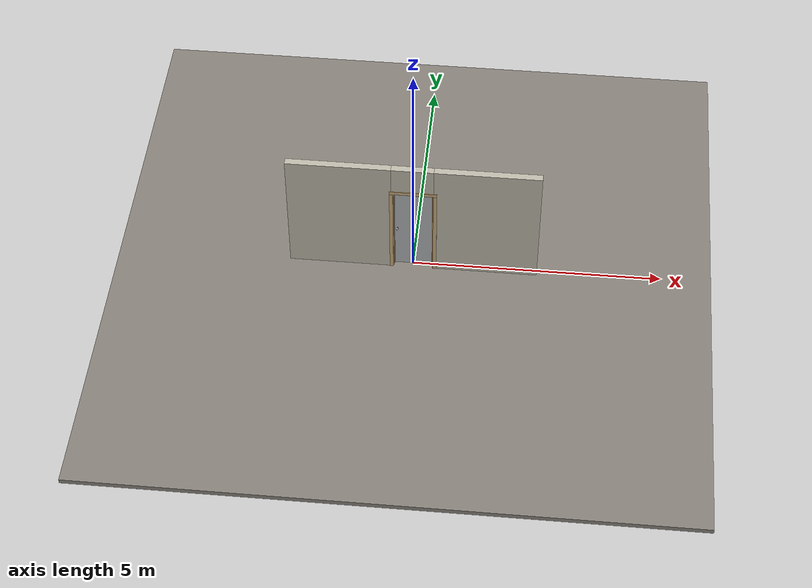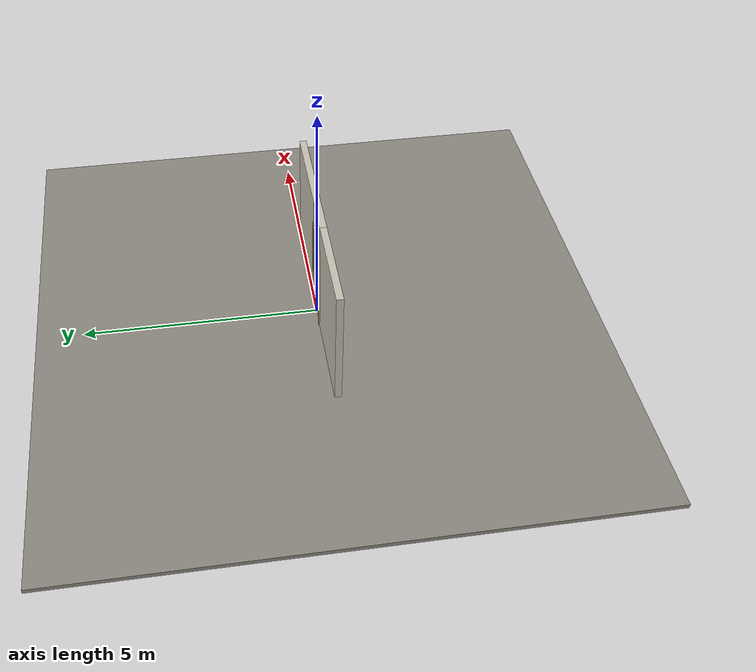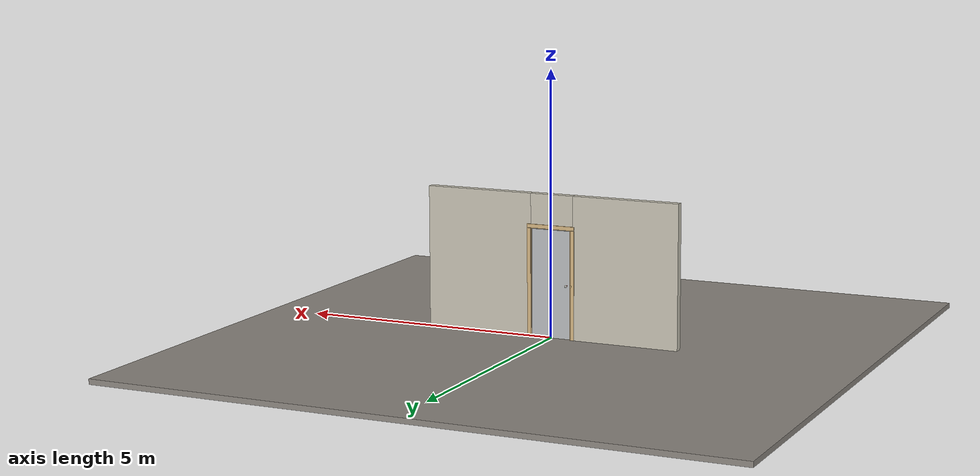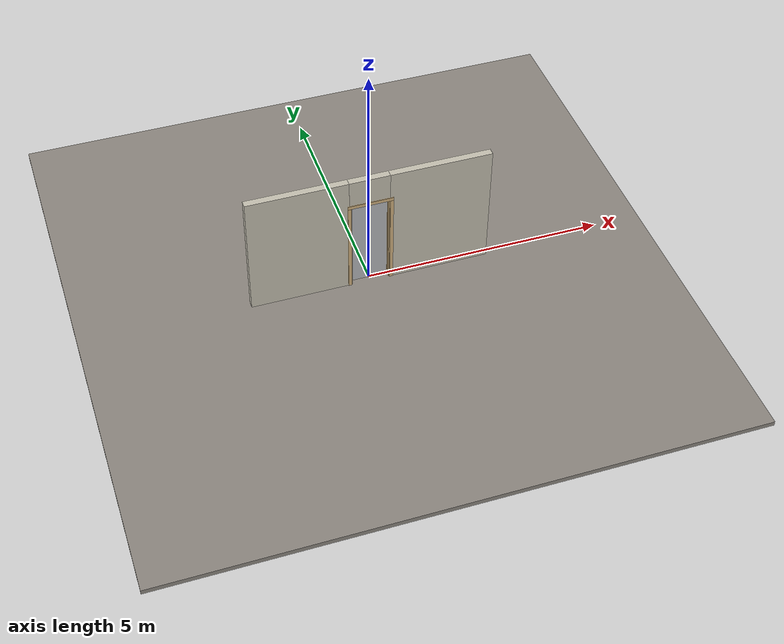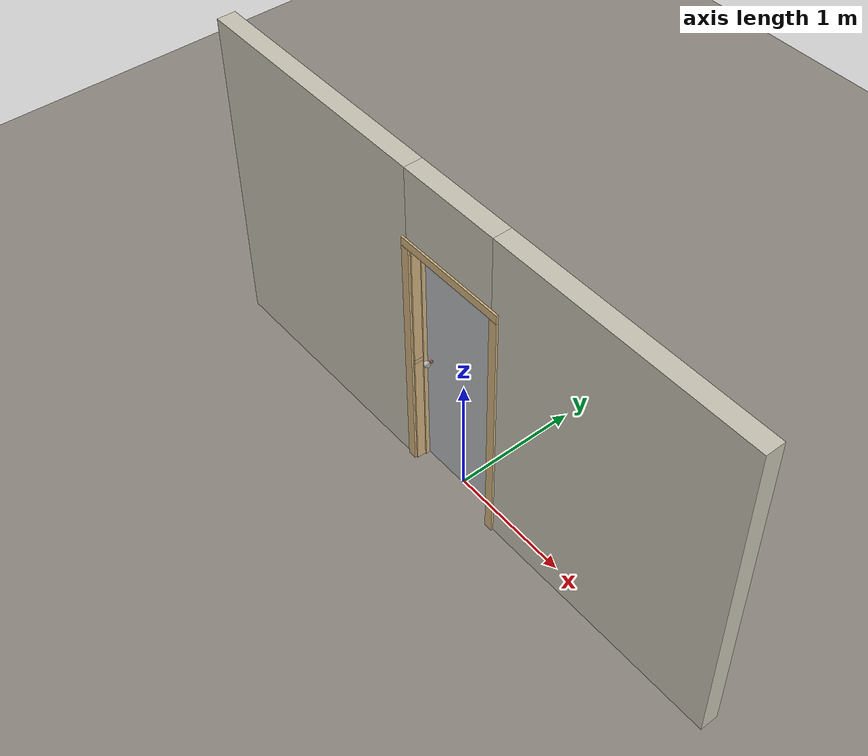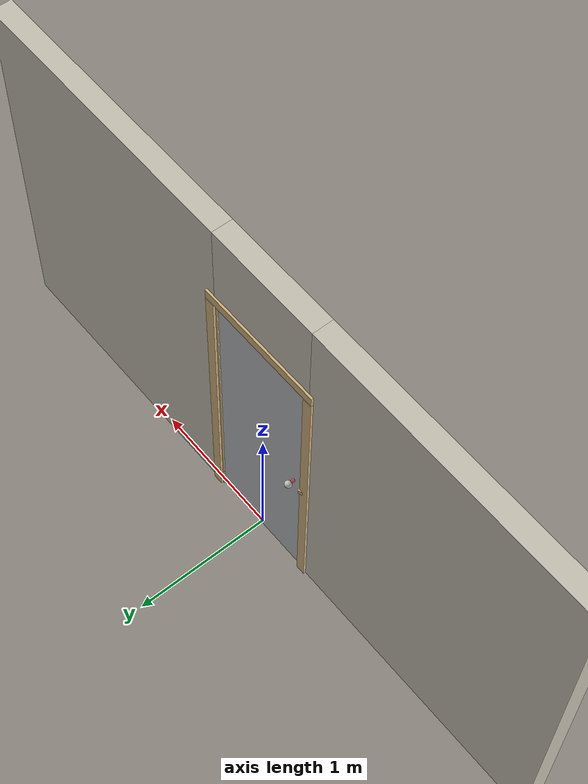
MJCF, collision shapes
<?xml version="1.0" ?>
<mujoco model="db0736_swing_single_full">
  <compiler angle="radian" meshdir="../../hardware" texturedir="../../textures" autolimits="true" inertiafromgeom="false"/>
  <option timestep="0.002" integrator="implicitfast" cone="elliptic" impratio="10" noslip_iterations="3">
    <flag multiccd="enable"/>
  </option>
  <size memory="16M"/>
  <default>
    <geom condim="4" solref="0.005 1" solimp="0.95 0.99 0.001"/>
    <joint solreflimit="0.005 1" solimplimit="0.95 0.99 0.001"/>
    <tendon solreflimit="0.005 1"/>
    <equality solref="0.002 1"/>
  </default>
  <visual>
    <headlight ambient="0.4 0.4 0.4" diffuse="0.7 0.7 0.7" specular="0.2 0.2 0.2"/>
    <quality shadowsize="4096"/>
    <map znear="0.01" zfar="60"/>
  </visual>
  <asset>
    <mesh name="hinge_9ae1f9b7de" file="hinge_9ae1f9b7de.obj"/>
    <mesh name="hinge_jamb_50e97ebc96" file="hinge_jamb_50e97ebc96.obj"/>
    <mesh name="knob_0ccd68d739" file="knob_0ccd68d739.obj"/>
    <material name="mat_floor" rgba="0.55 0.53 0.5 1" specular="0.2" shininess="0.15" reflectance="0"/>
    <material name="mat_wall" rgba="0.78 0.76 0.7 1" specular="0.2" shininess="0.1" reflectance="0"/>
    <material name="mat_leaf" rgba="0.72 0.73 0.74 1" specular="0.2" shininess="0.53" reflectance="0"/>
    <material name="mat_hinge" rgba="0.65 0.66 0.68 1" specular="0.74" shininess="0.5" reflectance="0.36"/>
    <material name="mat_op_hpl" rgba="0.75 0.75 0.72 1" specular="0.2" shininess="0.65" reflectance="0"/>
    <material name="mat_trim" rgba="0.85 0.66 0.3 1" specular="0.8" shininess="0.75" reflectance="0.4"/>
    <material name="mat_bolt" rgba="0.85 0.66 0.3 1" specular="0.8" shininess="0.75" reflectance="0.4"/>
    <material name="mat_frame" rgba="0.82 0.7 0.5 1" specular="0.2" shininess="0.45" reflectance="0"/>
    <material name="mat_seal" rgba="0.1 0.1 0.1 1" specular="0.2" shininess="0.1" reflectance="0"/>
    <texture name="skybox" type="skybox" builtin="gradient" rgb1="0.6 0.7 0.85" rgb2="0.9 0.92 0.95" width="256" height="256"/>
  </asset>
  <worldbody>
    <light name="sun" pos="1.5 -2.5 4" dir="-0.3 0.5 -0.8" directional="true" diffuse="0.8 0.8 0.8" specular="0.3 0.3 0.3" castshadow="true"/>
    <light name="fill" pos="-1.5 2.5 3" dir="0.3 -0.5 -0.7" directional="true" diffuse="0.35 0.35 0.4" castshadow="false"/>
    <camera name="robot_view" pos="0 -2.590187 1.734312" xyaxes="1 0 0 0 0.26963 0.962964" fovy="52"/>
    <camera name="far_view" pos="0 2.494187 1.734312" xyaxes="-1 0 0 0 -0.26963 0.962964" fovy="52"/>
    <camera name="iso" pos="-1.932062 -2.183438 2.141063" xyaxes="0.741536 -0.670913 0 0.242917 0.268487 0.932151" fovy="46"/>
    <camera name="detail_handle" pos="-0.1405 -0.86375 1.296" xyaxes="0.97561 0.219512 0 -0.070934 0.315262 0.94635" fovy="38"/>
    <geom name="floor" type="box" size="6 6 0.05" pos="0 0 -0.05" material="mat_floor" group="0" contype="1" conaffinity="1" friction="0.8 0.005 0.0001" density="2400"/>
    <geom name="wall_left" type="box" size="1.03325 0.0725 1.35" pos="-1.46675 -0.048 1.35" material="mat_wall" group="0" contype="1" conaffinity="1" friction="0.6 0.005 0.0001" density="800"/>
    <geom name="wall_right" type="box" size="1.04825 0.0725 1.35" pos="1.45175 -0.048 1.35" material="mat_wall" group="0" contype="1" conaffinity="1" friction="0.6 0.005 0.0001" density="800"/>
    <geom name="wall_header" type="box" size="0.4185 0.0725 0.303" pos="-0.015 -0.048 2.397" material="mat_wall" group="0" contype="1" conaffinity="1" friction="0.6 0.005 0.0001" density="800"/>
    <geom name="hinge_0_jamb" type="mesh" mesh="hinge_jamb_50e97ebc96" pos="0.3815 0.0245 0.259" quat="0 0 0 1" material="mat_hinge" group="1" contype="0" conaffinity="0" density="7850"/>
    <geom name="hinge_1_jamb" type="mesh" mesh="hinge_jamb_50e97ebc96" pos="0.3815 0.0245 1.025" quat="0 0 0 1" material="mat_hinge" group="1" contype="0" conaffinity="0" density="7850"/>
    <geom name="hinge_2_jamb" type="mesh" mesh="hinge_jamb_50e97ebc96" pos="0.3815 0.0245 1.861" quat="0 0 0 1" material="mat_hinge" group="1" contype="0" conaffinity="0" density="7850"/>
    <geom name="jamb_hinge" type="box" size="0.0095 0.0725 1.0225" pos="0.394 -0.048 1.0225" material="mat_frame" group="0" contype="1" conaffinity="1" friction="0.6 0.005 0.0001" density="400"/>
    <geom name="strike_1016_wall_n" type="box" size="0.0245 0.056325 0.0167" pos="-0.409 -0.064175 1.016" material="mat_frame" group="0" contype="1" conaffinity="1" friction="0.6 0.005 0.0001" density="400"/>
    <geom name="strike_1016_wall_p" type="box" size="0.0245 0.008 0.0167" pos="-0.409 0.01585 1.016" material="mat_frame" group="0" contype="1" conaffinity="1" friction="0.6 0.005 0.0001" density="400"/>
    <geom name="strike_1016_ramp" type="box" size="0.0245 0.01649 0.0167" pos="-0.413636 0.028673 1.016" quat="0.977148 0 0 0.212558" material="mat_frame" group="0" contype="1" conaffinity="1" friction="0.12 0.005 0.0001" density="400"/>
    <geom name="strike_1016_back" type="box" size="0.01615 0.00785 0.0167" pos="-0.41735 0 1.016" material="mat_frame" group="0" contype="1" conaffinity="1" friction="0.6 0.005 0.0001" density="400"/>
    <geom name="jamb_strike_0" type="box" size="0.0245 0.0725 0.49965" pos="-0.409 -0.048 0.49965" material="mat_frame" group="0" contype="1" conaffinity="1" friction="0.6 0.005 0.0001" density="400"/>
    <geom name="jamb_strike_1" type="box" size="0.0245 0.0725 0.50615" pos="-0.409 -0.048 1.53885" material="mat_frame" group="0" contype="1" conaffinity="1" friction="0.6 0.005 0.0001" density="400"/>
    <geom name="jamb_head" type="box" size="0.4185 0.0725 0.0095" pos="-0.015 -0.048 2.0545" material="mat_frame" group="0" contype="1" conaffinity="1" friction="0.6 0.005 0.0001" density="400"/>
    <geom name="head_stud" type="box" size="0.4185 0.0725 0.015" pos="-0.015 -0.048 2.079" material="mat_wall" group="0" contype="1" conaffinity="1" friction="0.6 0.005 0.0001" density="500"/>
    <geom name="stop_hinge" type="box" size="0.0055 0.016 1.0225" pos="0.379 -0.034 1.0225" material="mat_frame" group="0" contype="1" conaffinity="1" friction="0.6 0.005 0.0001" density="400"/>
    <geom name="stop_strike" type="box" size="0.0055 0.016 1.0225" pos="-0.379 -0.034 1.0225" material="mat_frame" group="0" contype="1" conaffinity="1" friction="0.6 0.005 0.0001" density="400"/>
    <geom name="stop_head" type="box" size="0.3845 0.016 0.0055" pos="0 -0.034 2.0395" material="mat_frame" group="0" contype="1" conaffinity="1" friction="0.6 0.005 0.0001" density="400"/>
    <geom name="seal_hinge" type="box" size="0.004 0.002 1.0225" pos="0.3815 -0.0195 1.0225" material="mat_seal" group="1" contype="0" conaffinity="0" density="1100"/>
    <geom name="seal_strike" type="box" size="0.004 0.002 1.0225" pos="-0.3815 -0.0195 1.0225" material="mat_seal" group="1" contype="0" conaffinity="0" density="1100"/>
    <geom name="seal_head" type="box" size="0.3645 0.002 0.008" pos="0 -0.0195 2.033" material="mat_seal" group="1" contype="0" conaffinity="0" density="1100"/>
    <geom name="casing_l_n" type="box" size="0.035 0.008 1.032" pos="-0.4335 -0.1285 1.0225" material="mat_frame" group="2" contype="0" conaffinity="0" density="400"/>
    <geom name="casing_r_n" type="box" size="0.035 0.008 1.032" pos="0.4335 -0.1285 1.0225" material="mat_frame" group="2" contype="0" conaffinity="0" density="400"/>
    <geom name="casing_h_n" type="box" size="0.4685 0.008 0.035" pos="0 -0.1285 2.094" material="mat_frame" group="2" contype="0" conaffinity="0" density="400"/>
    <geom name="casing_l_p" type="box" size="0.035 0.008 1.032" pos="-0.4335 0.0325 1.0225" material="mat_frame" group="2" contype="0" conaffinity="0" density="400"/>
    <geom name="casing_r_p" type="box" size="0.035 0.008 1.032" pos="0.4335 0.0325 1.0225" material="mat_frame" group="2" contype="0" conaffinity="0" density="400"/>
    <geom name="casing_h_p" type="box" size="0.4685 0.008 0.035" pos="0 0.0325 2.094" material="mat_frame" group="2" contype="0" conaffinity="0" density="400"/>
    <site name="approach_point" pos="0 -1.5 0" quat="1 0 0 0" size="0.05" rgba="0.2 0.9 0.2 0.5" group="4"/>
    <site name="goal_point" pos="0 1.5 0" quat="1 0 0 0" size="0.05" rgba="0.2 0.9 0.2 0.5" group="4"/>
    <site name="door_plane_center" pos="0 0 1.0225" quat="1 0 0 0" size="0.02" rgba="0.2 0.9 0.2 0.5" group="4"/>
    <body name="leaf" pos="0.3845 0 0">
      <inertial pos="-0.374918 0.000512 1.02557" mass="12.937293" quat="0.499254 0.501116 -0.498866 0.500761" diaginertia="0.658819345 4.475909482 5.131877604"/>
      <joint name="leaf_hinge" type="hinge" axis="0 0 -1" pos="-0.003 0.0245 0" limited="true" range="0 1.919862" solreflimit="0.02 1" damping="2.123726" frictionloss="0.469407" stiffness="6.6" springref="-0.409091" armature="0.02"/>
      <geom name="leaf_slab" type="box" size="0.381 0.0175 1.016" pos="-0.384 0 1.025" material="mat_leaf" group="0" contype="1" conaffinity="1" friction="0.35 0.005 0.0001" density="1"/>
      <geom name="hinge_0" type="mesh" mesh="hinge_9ae1f9b7de" pos="-0.003 0.0245 0.259" quat="0 0 0 1" material="mat_hinge" group="1" contype="0" conaffinity="0" density="7850"/>
      <geom name="hinge_1" type="mesh" mesh="hinge_9ae1f9b7de" pos="-0.003 0.0245 1.025" quat="0 0 0 1" material="mat_hinge" group="1" contype="0" conaffinity="0" density="7850"/>
      <geom name="hinge_2" type="mesh" mesh="hinge_9ae1f9b7de" pos="-0.003 0.0245 1.861" quat="0 0 0 1" material="mat_hinge" group="1" contype="0" conaffinity="0" density="7850"/>
      <geom name="leaf_latch_bolt_faceplate" type="box" size="0.0006 0.01235 0.0267" pos="-0.7644 0 1.016" material="mat_bolt" group="1" contype="0" conaffinity="0" density="8500"/>
      <site name="leaf_edge_mid" pos="-0.765 0 1.016" quat="1 0 0 0" size="0.02" rgba="0.2 0.9 0.2 0.5" group="4"/>
      <body name="leaf_handle" pos="-0.705 0 1.016">
        <inertial pos="0 0 0" mass="1.150081" quat="0.707107 0 0 -0.707107" diaginertia="0.000298658 0.003840959 0.003840959"/>
        <joint name="leaf_handle_hinge" type="hinge" axis="0 1 0" limited="true" range="0 0.85" damping="0.128366" frictionloss="0.032" stiffness="0.4" springref="-0.5" armature="0.01"/>
        <geom name="leaf_handle_spindle" type="cylinder" size="0.006 0.0255" pos="0 0 0" quat="0.707107 -0.707107 0 0" material="mat_op_hpl" group="1" contype="0" conaffinity="0" density="7850"/>
        <geom name="leaf_handle_knob_n" type="mesh" mesh="knob_0ccd68d739" pos="0 -0.0175 0" quat="0 0 -0.707107 0.707107" material="mat_op_hpl" group="1" contype="0" conaffinity="0" density="3000"/>
        <geom name="leaf_handle_knob_col_n" type="sphere" size="0.02475" pos="0 -0.06375 0" material="mat_op_hpl" group="0" contype="1" conaffinity="1" friction="0.9 0.01 0.0001" density="3000"/>
        <geom name="leaf_handle_knob_neck_n" type="cylinder" size="0.011 0.012" pos="0 -0.0295 0" quat="0.707107 -0.707107 0 0" material="mat_op_hpl" group="3" contype="1" conaffinity="1" rgba="0.8 0.3 0.3 0.25" friction="0.6 0.005 0.0001" density="3000"/>
        <geom name="leaf_handle_knob_p" type="mesh" mesh="knob_0ccd68d739" pos="0 0.0175 0" quat="0 0 0.707107 0.707107" material="mat_op_hpl" group="1" contype="0" conaffinity="0" density="3000"/>
        <geom name="leaf_handle_knob_col_p" type="sphere" size="0.02475" pos="0 0.06375 0" material="mat_op_hpl" group="0" contype="1" conaffinity="1" friction="0.9 0.01 0.0001" density="3000"/>
        <geom name="leaf_handle_knob_neck_p" type="cylinder" size="0.011 0.012" pos="0 0.0295 0" quat="0.707107 -0.707107 0 0" material="mat_op_hpl" group="3" contype="1" conaffinity="1" rgba="0.8 0.3 0.3 0.25" friction="0.6 0.005 0.0001" density="3000"/>
        <site name="leaf_handle_grip_n" pos="0 -0.06375 0" quat="1 0 0 0" size="0.012" rgba="0.2 0.9 0.2 0.5" group="4"/>
        <site name="leaf_handle_grip_p" pos="0 0.06375 0" quat="1 0 0 0" size="0.012" rgba="0.2 0.9 0.2 0.5" group="4"/>
      </body>
      <body name="leaf_latch_bolt" pos="-0.765 0 1.016">
        <inertial pos="0.00865 0 0" mass="0.041419" quat="0.92388 0.382683 0 0" diaginertia="0.000000798 0.000005598 0.000005598"/>
        <joint name="leaf_latch_bolt_slide" type="slide" axis="1 0 0" limited="true" range="0 0.0127" damping="2" frictionloss="0.3" stiffness="300" springref="-0.008333" armature="0.1"/>
        <geom name="leaf_latch_bolt_capsule" type="capsule" size="0.00635 0.015" pos="0.00865 0 0" quat="0.707107 0 -0.707107 0" material="mat_bolt" group="0" contype="1" conaffinity="1" friction="0.2 0.005 0.0001" density="8500"/>
      </body>
    </body>
  </worldbody>
  <tendon>
    <fixed name="leaf_latch_bolt_coupling" limited="true" range="0 10">
      <joint joint="leaf_latch_bolt_slide" coef="1"/>
      <joint joint="leaf_handle_hinge" coef="-0.016933"/>
    </fixed>
  </tendon>
  <sensor>
    <jointpos name="leaf_hinge_pos" joint="leaf_hinge"/>
    <jointvel name="leaf_hinge_vel" joint="leaf_hinge"/>
    <jointpos name="leaf_handle_hinge_pos" joint="leaf_handle_hinge"/>
    <jointvel name="leaf_handle_hinge_vel" joint="leaf_handle_hinge"/>
    <jointpos name="leaf_latch_bolt_slide_pos" joint="leaf_latch_bolt_slide"/>
    <jointvel name="leaf_latch_bolt_slide_vel" joint="leaf_latch_bolt_slide"/>
  </sensor>
</mujoco>
